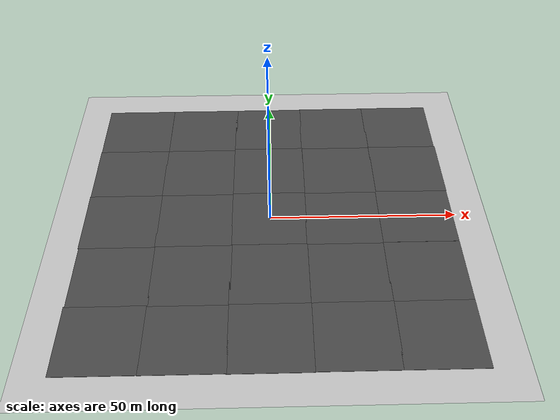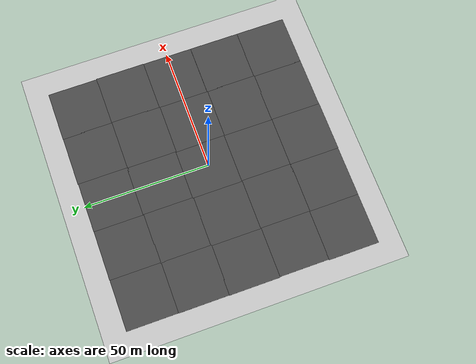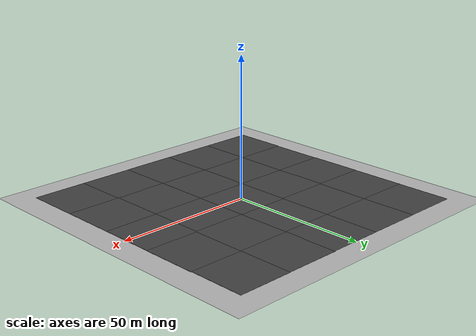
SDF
<sdf version="1.6">
 <world name="default">
  <light name="sun" type="directional">
   <pose>0 0 10 0 -0 0</pose>
   <diffuse>0.8 0.8 0.8 1</diffuse>
   <specular>0.2 0.2 0.2 1</specular>
   <attenuation>
    <range>1000</range>
    <constant>0.9</constant>
    <linear>0.01</linear>
    <quadratic>0.001</quadratic>
   </attenuation>
   <direction>-0.5 0.1 -0.9</direction>
  </light>
  <model name="ground_plane">
   <static>1</static>
   <link name="link">
    <collision name="collision">
     <geometry><plane><normal>0 0 1</normal><size>100 100</size></plane></geometry>
     <surface><friction><ode><mu>100</mu><mu2>50</mu2></ode></friction></surface>
    </collision>
    <visual name="visual">
     <cast_shadows>0</cast_shadows>
     <geometry><plane><normal>0 0 1</normal><size>100 100</size></plane></geometry>
     <material>
      <script><uri>file://media/materials/scripts/gazebo.material</uri><name>Gazebo/Grey</name></script>
     </material>
    </visual>
   </link>
  </model>
  <gravity>0 0 -9.8</gravity>
  <magnetic_field>6e-06 2.3e-05 -4.2e-05</magnetic_field>
  <atmosphere type="adiabatic"/>
  <physics name="default_physics" default="0" type="ode">
   <max_step_size>0.001</max_step_size>
   <real_time_factor>1</real_time_factor>
   <real_time_update_rate>1000</real_time_update_rate>
  </physics>
  <scene><ambient>0.4 0.4 0.4 1</ambient><background>0.7 0.7 0.7 1</background><shadows>1</shadows></scene>
  <audio><device>default</device></audio>
  <spherical_coordinates>
   <surface_model>EARTH_WGS84</surface_model>
   <latitude_deg>0</latitude_deg>
   <longitude_deg>0</longitude_deg>
   <elevation>0</elevation>
   <heading_deg>0</heading_deg>
  </spherical_coordinates>
  <model name="asphalt_plane">
   <static>1</static>
   <link name="link">
    <collision name="collision"><geometry><box><size>20 20 0.1</size></box></geometry></collision>
    <visual name="visual">
     <cast_shadows>0</cast_shadows>
     <geometry><box><size>20 20 0.1</size></box></geometry>
     <material>
      <script>
       <uri>model://asphalt_plane/materials/scripts</uri>
       <uri>model://asphalt_plane/materials/textures</uri>
       <name>vrc/asphalt</name>
      </script>
     </material>
    </visual>
   </link>
   <pose>-0.36863 0.061456 0 0 -0 0</pose>
  </model>
  <model name="asphalt_plane_clone">
   <static>1</static>
   <link name="link">
    <collision name="collision"><geometry><box><size>20 20 0.1</size></box></geometry></collision>
    <visual name="visual">
     <cast_shadows>0</cast_shadows>
     <geometry><box><size>20 20 0.1</size></box></geometry>
     <material>
      <script>
       <uri>model://asphalt_plane/materials/scripts</uri>
       <uri>model://asphalt_plane/materials/textures</uri>
       <name>vrc/asphalt</name>
      </script>
     </material>
    </visual>
   </link>
   <pose>-0.329479 19.9256 0 0 -0 0</pose>
  </model>
  <model name="asphalt_plane_clone_0">
   <static>1</static>
   <link name="link">
    <collision name="collision"><geometry><box><size>20 20 0.1</size></box></geometry></collision>
    <visual name="visual">
     <cast_shadows>0</cast_shadows>
     <geometry><box><size>20 20 0.1</size></box></geometry>
     <material>
      <script>
       <uri>model://asphalt_plane/materials/scripts</uri>
       <uri>model://asphalt_plane/materials/textures</uri>
       <name>vrc/asphalt</name>
      </script>
     </material>
    </visual>
   </link>
   <pose>-0.282441 39.4715 0 0 -0 0</pose>
  </model>
  <model name="asphalt_plane_clone_1">
   <static>1</static>
   <link name="link">
    <collision name="collision"><geometry><box><size>20 20 0.1</size></box></geometry></collision>
    <visual name="visual">
     <cast_shadows>0</cast_shadows>
     <geometry><box><size>20 20 0.1</size></box></geometry>
     <material>
      <script>
       <uri>model://asphalt_plane/materials/scripts</uri>
       <uri>model://asphalt_plane/materials/textures</uri>
       <name>vrc/asphalt</name>
      </script>
     </material>
    </visual>
   </link>
   <pose>-0.458438 -19.9419 0 0 -0 0</pose>
  </model>
  <model name="asphalt_plane_clone_2">
   <static>1</static>
   <link name="link">
    <collision name="collision"><geometry><box><size>20 20 0.1</size></box></geometry></collision>
    <visual name="visual">
     <cast_shadows>0</cast_shadows>
     <geometry><box><size>20 20 0.1</size></box></geometry>
     <material>
      <script>
       <uri>model://asphalt_plane/materials/scripts</uri>
       <uri>model://asphalt_plane/materials/textures</uri>
       <name>vrc/asphalt</name>
      </script>
     </material>
    </visual>
   </link>
   <pose>-0.375855 -39.9407 0 0 -0 0</pose>
  </model>
  <model name="asphalt_plane_clone_2_clone">
   <static>1</static>
   <link name="link">
    <collision name="collision"><geometry><box><size>20 20 0.1</size></box></geometry></collision>
    <visual name="visual">
     <cast_shadows>0</cast_shadows>
     <geometry><box><size>20 20 0.1</size></box></geometry>
     <material>
      <script>
       <uri>model://asphalt_plane/materials/scripts</uri>
       <uri>model://asphalt_plane/materials/textures</uri>
       <name>vrc/asphalt</name>
      </script>
     </material>
    </visual>
   </link>
   <pose>-20.1781 -39.8377 0 0 -0 0</pose>
  </model>
  <model name="asphalt_plane_clone_2_clone_0">
   <static>1</static>
   <link name="link">
    <collision name="collision"><geometry><box><size>20 20 0.1</size></box></geometry></collision>
    <visual name="visual">
     <cast_shadows>0</cast_shadows>
     <geometry><box><size>20 20 0.1</size></box></geometry>
     <material>
      <script>
       <uri>model://asphalt_plane/materials/scripts</uri>
       <uri>model://asphalt_plane/materials/textures</uri>
       <name>vrc/asphalt</name>
      </script>
     </material>
    </visual>
   </link>
   <pose>-40.1007 -39.8 0 0 -0 0</pose>
  </model>
  <model name="asphalt_plane_clone_2_clone_1">
   <static>1</static>
   <link name="link">
    <collision name="collision"><geometry><box><size>20 20 0.1</size></box></geometry></collision>
    <visual name="visual">
     <cast_shadows>0</cast_shadows>
     <geometry><box><size>20 20 0.1</size></box></geometry>
     <material>
      <script>
       <uri>model://asphalt_plane/materials/scripts</uri>
       <uri>model://asphalt_plane/materials/textures</uri>
       <name>vrc/asphalt</name>
      </script>
     </material>
    </visual>
   </link>
   <pose>-20.0758 -20.1124 0 0 -0 0</pose>
  </model>
  <model name="asphalt_plane_clone_2_clone_2">
   <static>1</static>
   <link name="link">
    <collision name="collision"><geometry><box><size>20 20 0.1</size></box></geometry></collision>
    <visual name="visual">
     <cast_shadows>0</cast_shadows>
     <geometry><box><size>20 20 0.1</size></box></geometry>
     <material>
      <script>
       <uri>model://asphalt_plane/materials/scripts</uri>
       <uri>model://asphalt_plane/materials/textures</uri>
       <name>vrc/asphalt</name>
      </script>
     </material>
    </visual>
   </link>
   <pose>-39.8234 -19.9189 0 0 -0 0</pose>
  </model>
  <model name="asphalt_plane_clone_2_clone_3">
   <static>1</static>
   <link name="link">
    <collision name="collision"><geometry><box><size>20 20 0.1</size></box></geometry></collision>
    <visual name="visual">
     <cast_shadows>0</cast_shadows>
     <geometry><box><size>20 20 0.1</size></box></geometry>
     <material>
      <script>
       <uri>model://asphalt_plane/materials/scripts</uri>
       <uri>model://asphalt_plane/materials/textures</uri>
       <name>vrc/asphalt</name>
      </script>
     </material>
    </visual>
   </link>
   <pose>-40.0241 -0.322205 0 0 -0 0</pose>
  </model>
  <model name="asphalt_plane_clone_2_clone_4">
   <static>1</static>
   <link name="link">
    <collision name="collision"><geometry><box><size>20 20 0.1</size></box></geometry></collision>
    <visual name="visual">
     <cast_shadows>0</cast_shadows>
     <geometry><box><size>20 20 0.1</size></box></geometry>
     <material>
      <script>
       <uri>model://asphalt_plane/materials/scripts</uri>
       <uri>model://asphalt_plane/materials/textures</uri>
       <name>vrc/asphalt</name>
      </script>
     </material>
    </visual>
   </link>
   <pose>-20.2501 -0.22602 0 0 -0 0</pose>
  </model>
  <model name="asphalt_plane_clone_2_clone_5">
   <static>1</static>
   <link name="link">
    <collision name="collision"><geometry><box><size>20 20 0.1</size></box></geometry></collision>
    <visual name="visual">
     <cast_shadows>0</cast_shadows>
     <geometry><box><size>20 20 0.1</size></box></geometry>
     <material>
      <script>
       <uri>model://asphalt_plane/materials/scripts</uri>
       <uri>model://asphalt_plane/materials/textures</uri>
       <name>vrc/asphalt</name>
      </script>
     </material>
    </visual>
   </link>
   <pose>-20.1297 19.6688 0 0 -0 0</pose>
  </model>
  <model name="asphalt_plane_clone_2_clone_6">
   <static>1</static>
   <link name="link">
    <collision name="collision"><geometry><box><size>20 20 0.1</size></box></geometry></collision>
    <visual name="visual">
     <cast_shadows>0</cast_shadows>
     <geometry><box><size>20 20 0.1</size></box></geometry>
     <material>
      <script>
       <uri>model://asphalt_plane/materials/scripts</uri>
       <uri>model://asphalt_plane/materials/textures</uri>
       <name>vrc/asphalt</name>
      </script>
     </material>
    </visual>
   </link>
   <pose>-39.9185 19.4311 0 0 -0 0</pose>
  </model>
  <model name="asphalt_plane_clone_2_clone_7">
   <static>1</static>
   <link name="link">
    <collision name="collision"><geometry><box><size>20 20 0.1</size></box></geometry></collision>
    <visual name="visual">
     <cast_shadows>0</cast_shadows>
     <geometry><box><size>20 20 0.1</size></box></geometry>
     <material>
      <script>
       <uri>model://asphalt_plane/materials/scripts</uri>
       <uri>model://asphalt_plane/materials/textures</uri>
       <name>vrc/asphalt</name>
      </script>
     </material>
    </visual>
   </link>
   <pose>-39.8198 39.3396 0 0 -0 0</pose>
  </model>
  <model name="asphalt_plane_clone_2_clone_8">
   <static>1</static>
   <link name="link">
    <collision name="collision"><geometry><box><size>20 20 0.1</size></box></geometry></collision>
    <visual name="visual">
     <cast_shadows>0</cast_shadows>
     <geometry><box><size>20 20 0.1</size></box></geometry>
     <material>
      <script>
       <uri>model://asphalt_plane/materials/scripts</uri>
       <uri>model://asphalt_plane/materials/textures</uri>
       <name>vrc/asphalt</name>
      </script>
     </material>
    </visual>
   </link>
   <pose>-19.8747 39.4184 0 0 -0 0</pose>
  </model>
  <model name="asphalt_plane_clone_2_clone_9">
   <static>1</static>
   <link name="link">
    <collision name="collision"><geometry><box><size>20 20 0.1</size></box></geometry></collision>
    <visual name="visual">
     <cast_shadows>0</cast_shadows>
     <geometry><box><size>20 20 0.1</size></box></geometry>
     <material>
      <script>
       <uri>model://asphalt_plane/materials/scripts</uri>
       <uri>model://asphalt_plane/materials/textures</uri>
       <name>vrc/asphalt</name>
      </script>
     </material>
    </visual>
   </link>
   <pose>19.5852 -39.835 0 0 -0 0</pose>
  </model>
  <model name="asphalt_plane_clone_2_clone_10">
   <static>1</static>
   <link name="link">
    <collision name="collision"><geometry><box><size>20 20 0.1</size></box></geometry></collision>
    <visual name="visual">
     <cast_shadows>0</cast_shadows>
     <geometry><box><size>20 20 0.1</size></box></geometry>
     <material>
      <script>
       <uri>model://asphalt_plane/materials/scripts</uri>
       <uri>model://asphalt_plane/materials/textures</uri>
       <name>vrc/asphalt</name>
      </script>
     </material>
    </visual>
   </link>
   <pose>19.5555 -20.104 0 0 -0 0</pose>
  </model>
  <model name="asphalt_plane_clone_2_clone_11">
   <static>1</static>
   <link name="link">
    <collision name="collision"><geometry><box><size>20 20 0.1</size></box></geometry></collision>
    <visual name="visual">
     <cast_shadows>0</cast_shadows>
     <geometry><box><size>20 20 0.1</size></box></geometry>
     <material>
      <script>
       <uri>model://asphalt_plane/materials/scripts</uri>
       <uri>model://asphalt_plane/materials/textures</uri>
       <name>vrc/asphalt</name>
      </script>
     </material>
    </visual>
   </link>
   <pose>19.3785 -0.183989 0 0 -0 0</pose>
  </model>
  <model name="asphalt_plane_clone_2_clone_12">
   <static>1</static>
   <link name="link">
    <collision name="collision"><geometry><box><size>20 20 0.1</size></box></geometry></collision>
    <visual name="visual">
     <cast_shadows>0</cast_shadows>
     <geometry><box><size>20 20 0.1</size></box></geometry>
     <material>
      <script>
       <uri>model://asphalt_plane/materials/scripts</uri>
       <uri>model://asphalt_plane/materials/textures</uri>
       <name>vrc/asphalt</name>
      </script>
     </material>
    </visual>
   </link>
   <pose>19.5867 19.6998 0 0 -0 0</pose>
  </model>
  <model name="asphalt_plane_clone_2_clone_13">
   <static>1</static>
   <link name="link">
    <collision name="collision"><geometry><box><size>20 20 0.1</size></box></geometry></collision>
    <visual name="visual">
     <cast_shadows>0</cast_shadows>
     <geometry><box><size>20 20 0.1</size></box></geometry>
     <material>
      <script>
       <uri>model://asphalt_plane/materials/scripts</uri>
       <uri>model://asphalt_plane/materials/textures</uri>
       <name>vrc/asphalt</name>
      </script>
     </material>
    </visual>
   </link>
   <pose>19.4679 39.6646 0 0 -0 0</pose>
  </model>
  <model name="asphalt_plane_clone_2_clone_14">
   <static>1</static>
   <link name="link">
    <collision name="collision"><geometry><box><size>20 20 0.1</size></box></geometry></collision>
    <visual name="visual">
     <cast_shadows>0</cast_shadows>
     <geometry><box><size>20 20 0.1</size></box></geometry>
     <material>
      <script>
       <uri>model://asphalt_plane/materials/scripts</uri>
       <uri>model://asphalt_plane/materials/textures</uri>
       <name>vrc/asphalt</name>
      </script>
     </material>
    </visual>
   </link>
   <pose>39.1794 39.7774 0 0 -0 0</pose>
  </model>
  <model name="asphalt_plane_clone_2_clone_15">
   <static>1</static>
   <link name="link">
    <collision name="collision"><geometry><box><size>20 20 0.1</size></box></geometry></collision>
    <visual name="visual">
     <cast_shadows>0</cast_shadows>
     <geometry><box><size>20 20 0.1</size></box></geometry>
     <material>
      <script>
       <uri>model://asphalt_plane/materials/scripts</uri>
       <uri>model://asphalt_plane/materials/textures</uri>
       <name>vrc/asphalt</name>
      </script>
     </material>
    </visual>
   </link>
   <pose>39.402 19.8994 0 0 -0 0</pose>
  </model>
  <model name="asphalt_plane_clone_2_clone_16">
   <static>1</static>
   <link name="link">
    <collision name="collision"><geometry><box><size>20 20 0.1</size></box></geometry></collision>
    <visual name="visual">
     <cast_shadows>0</cast_shadows>
     <geometry><box><size>20 20 0.1</size></box></geometry>
     <material>
      <script>
       <uri>model://asphalt_plane/materials/scripts</uri>
       <uri>model://asphalt_plane/materials/textures</uri>
       <name>vrc/asphalt</name>
      </script>
     </material>
    </visual>
   </link>
   <pose>39.307 0.067788 0 0 -0 0</pose>
  </model>
  <model name="asphalt_plane_clone_2_clone_17">
   <static>1</static>
   <link name="link">
    <collision name="collision"><geometry><box><size>20 20 0.1</size></box></geometry></collision>
    <visual name="visual">
     <cast_shadows>0</cast_shadows>
     <geometry><box><size>20 20 0.1</size></box></geometry>
     <material>
      <script>
       <uri>model://asphalt_plane/materials/scripts</uri>
       <uri>model://asphalt_plane/materials/textures</uri>
       <name>vrc/asphalt</name>
      </script>
     </material>
    </visual>
   </link>
   <pose>39.3062 -19.9491 0 0 -0 0</pose>
  </model>
  <model name="asphalt_plane_clone_2_clone_18">
   <static>1</static>
   <link name="link">
    <collision name="collision"><geometry><box><size>20 20 0.1</size></box></geometry></collision>
    <visual name="visual">
     <cast_shadows>0</cast_shadows>
     <geometry><box><size>20 20 0.1</size></box></geometry>
     <material>
      <script>
       <uri>model://asphalt_plane/materials/scripts</uri>
       <uri>model://asphalt_plane/materials/textures</uri>
       <name>vrc/asphalt</name>
      </script>
     </material>
    </visual>
   </link>
   <pose>39.3188 -39.8411 0 0 -0 0</pose>
  </model>
  <plugin name="collision_map_creator" filename="libcollision_map_creator.so"/>
 </world>
</sdf>
